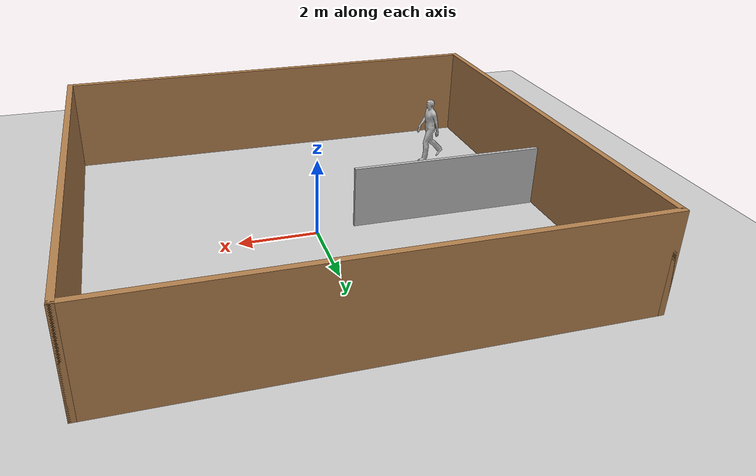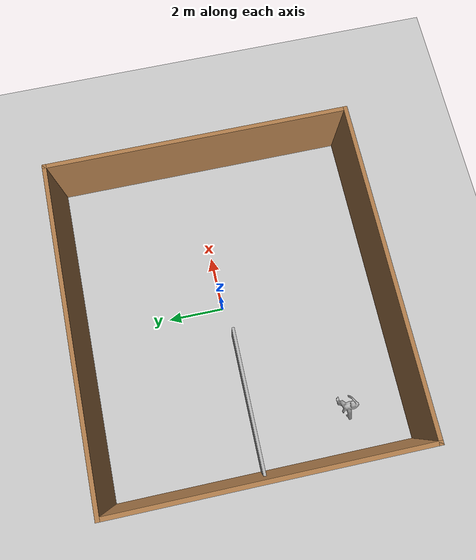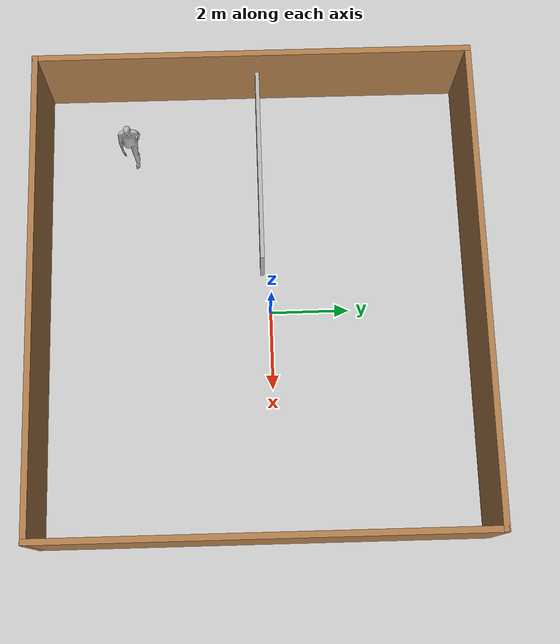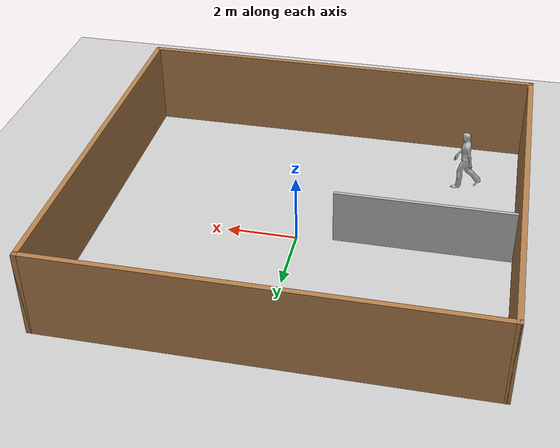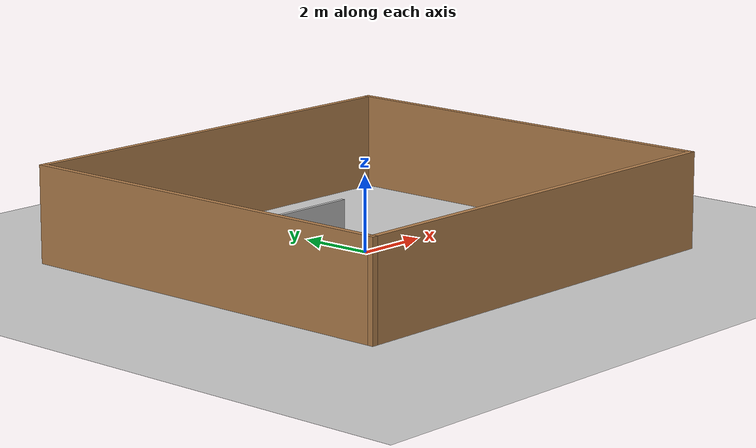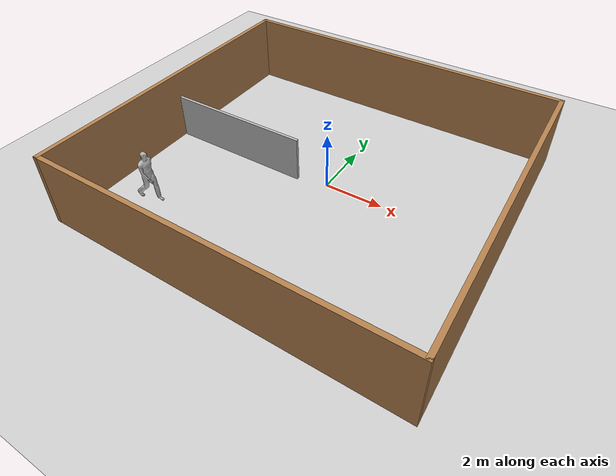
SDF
<sdf version="1.7">
 <world name="default">
  <light name="sun" type="directional">
   <pose>0 0 10 0 -0 0</pose>
   <diffuse>0.8 0.8 0.8 1</diffuse>
   <specular>0.2 0.2 0.2 1</specular>
   <attenuation>
    <range>1000</range>
    <constant>0.9</constant>
    <linear>0.01</linear>
    <quadratic>0.001</quadratic>
   </attenuation>
   <direction>-0.5 0.1 -0.9</direction>
   <spot><inner_angle>0</inner_angle><outer_angle>0</outer_angle><falloff>0</falloff></spot>
  </light>
  <model name="ground_plane">
   <static>1</static>
   <link name="link">
    <collision name="collision">
     <geometry><plane><normal>0 0 1</normal><size>100 100</size></plane></geometry>
     <surface>
      <contact><collide_bitmask>65535</collide_bitmask></contact>
      <friction><ode><mu>100</mu><mu2>50</mu2></ode></friction>
     </surface>
    </collision>
    <visual name="visual">
     <cast_shadows>0</cast_shadows>
     <geometry><plane><normal>0 0 1</normal><size>100 100</size></plane></geometry>
     <material>
      <script><uri>file://media/materials/scripts/gazebo.material</uri><name>Gazebo/Grey</name></script>
     </material>
    </visual>
   </link>
  </model>
  <gravity>0 0 -9.8</gravity>
  <magnetic_field>6e-06 2.3e-05 -4.2e-05</magnetic_field>
  <atmosphere type="adiabatic"/>
  <physics type="ode">
   <max_step_size>0.01</max_step_size>
   <real_time_factor>10</real_time_factor>
   <real_time_update_rate>0</real_time_update_rate>
  </physics>
  <scene><ambient>0.4 0.4 0.4 1</ambient><background>0.7 0.7 0.7 1</background><shadows>1</shadows></scene>
  <spherical_coordinates>
   <surface_model>EARTH_WGS84</surface_model>
   <latitude_deg>0</latitude_deg>
   <longitude_deg>0</longitude_deg>
   <elevation>0</elevation>
   <heading_deg>0</heading_deg>
  </spherical_coordinates>
  <model name="wall_frame_1">
   <pose>-0.16621 -0.326814 0 0 -0 0</pose>
   <link name="Wall_10">
    <collision name="Wall_10_Collision">
     <geometry><box><size>11 0.15 2.5</size></box></geometry>
     <pose>0 0 1.25 0 -0 0</pose>
    </collision>
    <visual name="Wall_10_Visual">
     <pose>0 0 1.25 0 -0 0</pose>
     <geometry><box><size>11 0.15 2.5</size></box></geometry>
     <material>
      <script><uri>file://media/materials/scripts/gazebo.material</uri><name>Gazebo/Wood</name></script>
      <ambient>1 1 1 1</ambient>
     </material>
     <meta><layer>0</layer></meta>
    </visual>
    <pose>-5.925 -0 0 0 -0 1.5708</pose>
   </link>
   <link name="Wall_7">
    <collision name="Wall_7_Collision">
     <geometry><box><size>12 0.15 2.5</size></box></geometry>
     <pose>0 0 1.25 0 -0 0</pose>
    </collision>
    <visual name="Wall_7_Visual">
     <pose>0 0 1.25 0 -0 0</pose>
     <geometry><box><size>12 0.15 2.5</size></box></geometry>
     <material>
      <script><uri>file://media/materials/scripts/gazebo.material</uri><name>Gazebo/Wood</name></script>
      <ambient>1 1 1 1</ambient>
     </material>
     <meta><layer>0</layer></meta>
    </visual>
    <pose>0 5.425 0 0 -0 0</pose>
   </link>
   <link name="Wall_8">
    <collision name="Wall_8_Collision">
     <geometry><box><size>11 0.15 2.5</size></box></geometry>
     <pose>0 0 1.25 0 -0 0</pose>
    </collision>
    <visual name="Wall_8_Visual">
     <pose>0 0 1.25 0 -0 0</pose>
     <geometry><box><size>11 0.15 2.5</size></box></geometry>
     <material>
      <script><uri>file://media/materials/scripts/gazebo.material</uri><name>Gazebo/Wood</name></script>
      <ambient>1 1 1 1</ambient>
     </material>
     <meta><layer>0</layer></meta>
    </visual>
    <pose>5.925 -0 0 0 -0 -1.5708</pose>
   </link>
   <link name="Wall_9">
    <collision name="Wall_9_Collision">
     <geometry><box><size>12 0.15 2.5</size></box></geometry>
     <pose>0 0 1.25 0 -0 0</pose>
    </collision>
    <visual name="Wall_9_Visual">
     <pose>0 0 1.25 0 -0 0</pose>
     <geometry><box><size>12 0.15 2.5</size></box></geometry>
     <material>
      <script><uri>file://media/materials/scripts/gazebo.material</uri><name>Gazebo/Wood</name></script>
      <ambient>1 1 1 1</ambient>
     </material>
     <meta><layer>0</layer></meta>
    </visual>
    <pose>0 -5.425 0 0 -0 3.14159</pose>
   </link>
   <static>1</static>
  </model>
  <model name="room_wall_2x5m">
   <link name="link">
    <visual name="visual">
     <geometry><box><size>0.1 5 2</size></box></geometry>
     <material>
      <script>
       <uri>model://room_wall_2x5m/material/script</uri>
       <uri>model://room_wall_2x5m/material/textures</uri>
       <name>Custom/room_wall_2x5m</name>
      </script>
     </material>
    </visual>
    <collision name="collision"><geometry><box><size>0.1 5 2</size></box></geometry></collision>
   </link>
   <static>1</static>
   <pose>-3.51433 -0.191153 0.58335 0 0 -1.57088</pose>
  </model>
  <model name="person_walking">
   <link name="link">
    <inertial>
     <pose>0 0 0.95 0 -0 0</pose>
     <mass>80</mass>
     <inertia><ixx>27.82</ixx><ixy>0</ixy><ixz>0</ixz><iyy>24.88</iyy><iyz>0</iyz><izz>4.57</izz></inertia>
    </inertial>
    <collision name="bottom">
     <pose>0 0 0.01 0 -0 0</pose>
     <geometry><box><size>0.35 0.75 0.02</size></box></geometry>
    </collision>
    <collision name="person">
     <pose>0 0 -0.02 0 -0 0</pose>
     <geometry><mesh><uri>model://person_walking/meshes/walking.dae</uri></mesh></geometry>
    </collision>
    <visual name="visual">
     <pose>0 0 -0.02 0 -0 0</pose>
     <geometry><mesh><uri>model://person_walking/meshes/walking.dae</uri></mesh></geometry>
    </visual>
   </link>
   <pose>-4.45521 -3.52902 0 1e-06 0 1.5978</pose>
  </model>
 </world>
</sdf>
